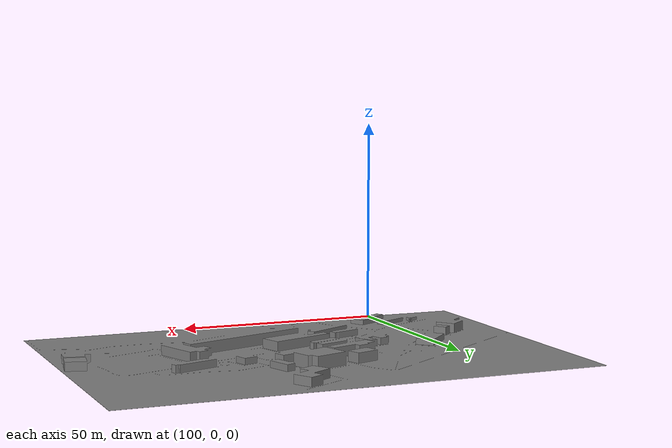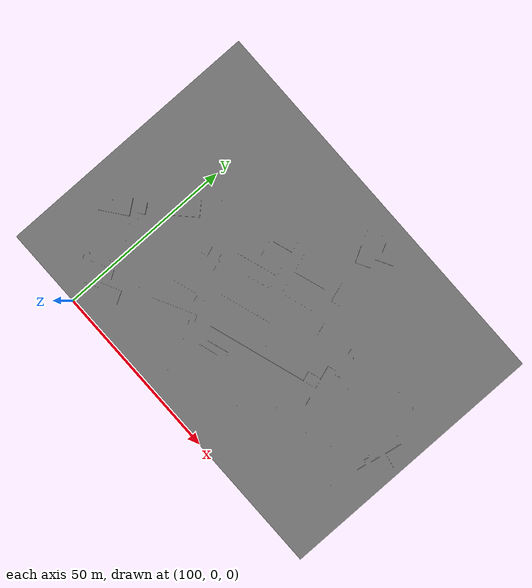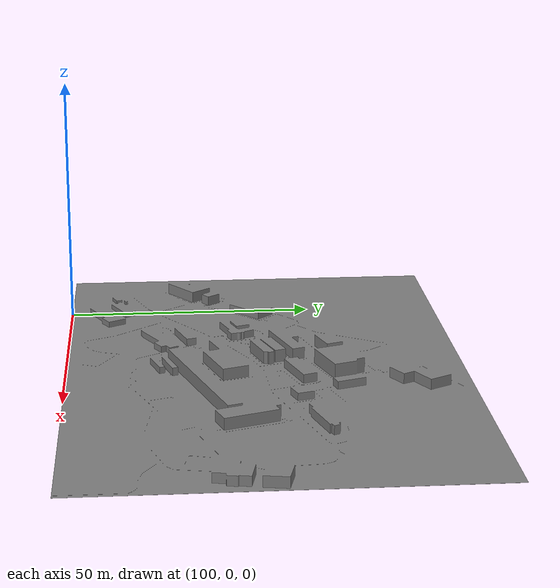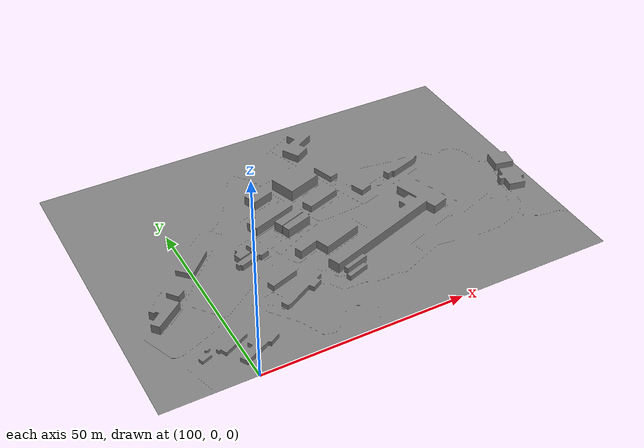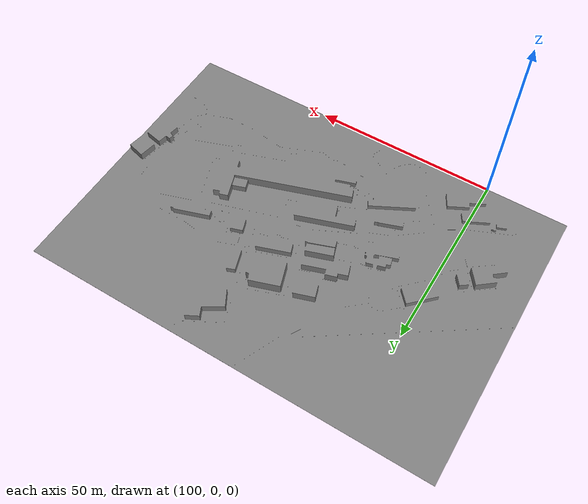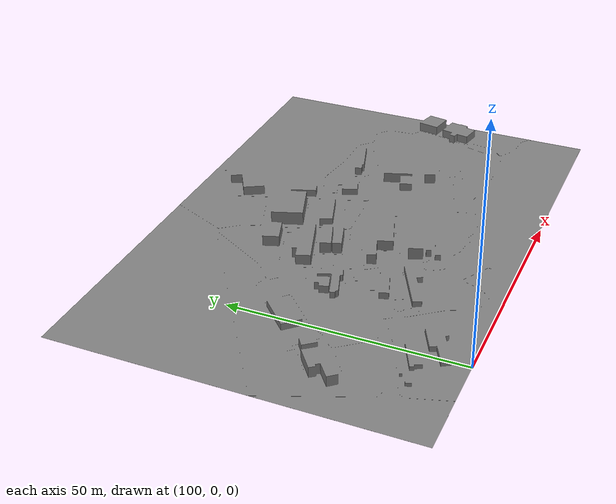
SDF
<?xml version="1.0"?>
<sdf version="1.6">
  <model name="kimm_city">
    <static>true</static>
    <link name="link">
      <collision name="collision">
        <geometry>
          <mesh>
            <uri>file:///home/KIMM_FSD/KIMM_CITY_VER1.stl</uri>
            <scale>0.0001 0.0001 0.0001</scale>
          </mesh>
        </geometry>
      </collision>
      <visual name="visual">
        <geometry>
          <mesh>
            <uri>file:///home/KIMM_FSD/KIMM_CITY_VER1.stl</uri>
            <scale>0.0001 0.0001 0.0001</scale>
          </mesh>
        </geometry>
        <material>
          <ambient>0.5 0.5 0.5 1</ambient>
          <diffuse>0.5 0.5 0.5 1</diffuse>
          <specular>0.1 0.1 0.1 1</specular>
        </material>
      </visual>
    </link>
  </model>
</sdf>
